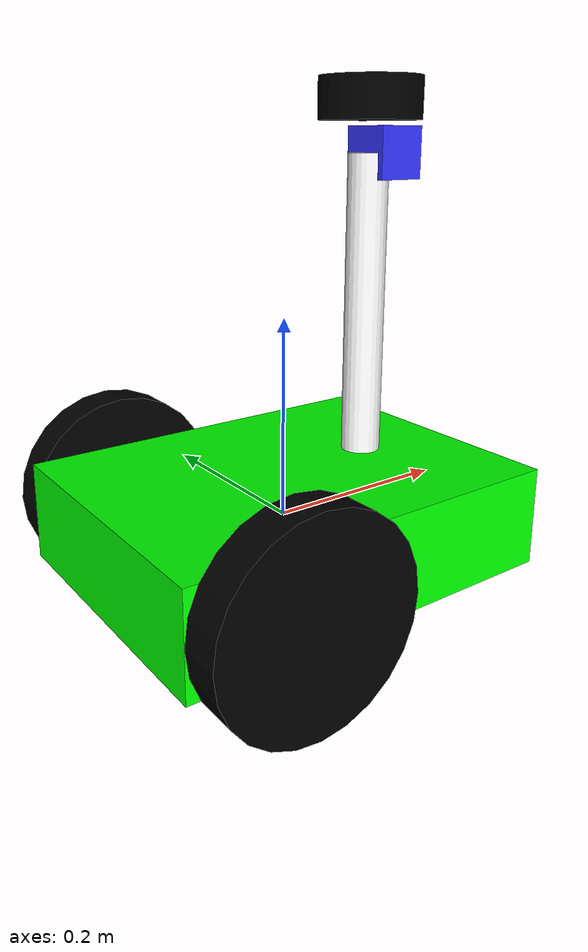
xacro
<?xml version="1.0"?>
<robot name="robotito" xmlns:xacro="http://www.ros.org/wiki/xacro">

  <!-- namespace -->
  <xacro:arg name="prefix" default="" />
  <xacro:property name="prefijo_ns" value="$(arg prefix)" />

  <!-- los distintos archivos que usa -->
  <xacro:include filename="inertial_macros.xacro" />
  <xacro:include filename="gazebo_control.xacro" />
  <xacro:include filename="lidar.xacro" />
  <xacro:include filename="camera.xacro" />

  <!-- ya las cosas del robot -->
  <xacro:property name="largo_chasis" value="0.4" />
  <xacro:property name="ancho_chasis" value="0.3" />
  <xacro:property name="alto_chasis" value="0.1" />
  <xacro:property name="masa_chasis" value="1.0" />

  <xacro:property name="radio_rueda" value="0.1" />
  <xacro:property name="grosor_rueda" value="0.04" />
  <xacro:property name="masa_rueda" value="0.1" />
  <xacro:property name="offset_rueda_x" value="0.1" />
  <xacro:property name="offset_rueda_y" value="0.1705" />
  <xacro:property name="offset_rueda_z" value="0.0" />

  <xacro:property name="radio_rueda_loca" value="0.025" />
  <xacro:property name="masa_rueda_loca" value="0.05" />
  <xacro:property name="offset_rueda_loca_x" value="0.15" />
  <xacro:property name="offset_rueda_loca_z" value="-0.075" />

  <material name="white">
    <color rgba="1 1 1 1" />
  </material>

  <material name="orange">
    <color rgba="1 0.3 0.1 1"/>
  </material>

  <material name="blue">
    <color rgba="0.2 0.2 1 1"/>
  </material>

  <material name="black">
    <color rgba="0 0 0 1"/>
  </material>

  <material name="green">
    <color rgba="0 1 0 1"/>
  </material>

  <!-- el base link-->
  <link name="${prefijo_ns}base_link">
    <visual>
        <origin xyz="0 0 0" rpy="0 0 0"/>
        <geometry>
            <box size="${largo_chasis} ${ancho_chasis} ${alto_chasis}"/>
        </geometry>
        <material name="green"/>
    </visual>
    <collision>
        <origin xyz="0 0 0" rpy="0 0 0"/>
        <geometry>
            <box size="${largo_chasis} ${ancho_chasis} ${alto_chasis}"/>
        </geometry>
    </collision>
    <xacro:inercia_caja mass="${masa_chasis}" x="${largo_chasis}" y="${ancho_chasis}" z="${alto_chasis}">
        <origin xyz="0 0 0" rpy="0 0 0"/>
    </xacro:inercia_caja>
  </link>

  <!-- wheel macro -->
  <xacro:macro name="wheel" params="lado desplazamiento_y">
    <link name="${prefijo_ns}${lado}_wheel">
      <visual>
        <origin xyz="0 0 0" rpy="1.5707 0 0 "/>
        <geometry>
            <cylinder radius="${radio_rueda}" length="${grosor_rueda}"/>
        </geometry>
        <material name="black"/>
      </visual>
      <collision>
        <origin xyz="0 0 0" rpy="1.5707 0 0 "/>
        <geometry>
            <cylinder radius="${radio_rueda}" length="${grosor_rueda}"/>
        </geometry>
      </collision>
      <xacro:inercia_cilindro mass="${masa_rueda}" length="${grosor_rueda}" radius="${radio_rueda}">
        <origin xyz="0 0 0" rpy="1.5707 0 0"/>
      </xacro:inercia_cilindro>
    </link>

    <joint name="${prefijo_ns}${lado}_wheel_joint" type="continuous">
      <parent link="${prefijo_ns}base_link"/>
      <child link="${prefijo_ns}${lado}_wheel"/>
      <origin xyz="${-offset_rueda_x} ${desplazamiento_y} ${offset_rueda_z}" rpy="0 0 0"/>
      <axis xyz="0 1 0"/>
    </joint>
  </xacro:macro>

  <xacro:wheel lado="left" desplazamiento_y="${offset_rueda_y}"/>
  <xacro:wheel lado="right" desplazamiento_y="${-offset_rueda_y}"/>

<!-- rueda caster-->

  <link name="${prefijo_ns}caster_wheel">
    <visual>
      <geometry>
        <sphere radius="${radio_rueda_loca}"/>
      </geometry>
      <material name="white"/>
    </visual>
    <collision>
      <geometry>
        <sphere radius="${radio_rueda_loca}"/>
      </geometry>
    </collision>
    <xacro:inercia_esfera mass="${masa_rueda_loca}" radius="${radio_rueda_loca}">
        <origin xyz="0 0 0" rpy="0 0 0"/>
    </xacro:inercia_esfera>
  </link>

  <joint name="${prefijo_ns}caster_joint" type="fixed">
    <parent link="${prefijo_ns}base_link"/>
    <child link="${prefijo_ns}caster_wheel"/>
    <origin xyz="${offset_rueda_loca_x} 0 ${offset_rueda_loca_z}"/>
  </joint>

</robot>

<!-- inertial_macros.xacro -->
<robot xmlns:xacro="http://www.ros.org/wiki/xacro" >

    <xacro:macro name="inercia_esfera" params="mass radius *origin">
        <inertial>
            <xacro:insert_block name="origin"/>
            <mass value="${mass}" />
            <inertia ixx="${(2/5) * mass * (radius*radius)}" ixy="0.0" ixz="0.0"
                    iyy="${(2/5) * mass * (radius*radius)}" iyz="0.0"
                    izz="${(2/5) * mass * (radius*radius)}" />
        </inertial>
    </xacro:macro>

    <xacro:macro name="inercia_caja" params="mass x y z *origin">
        <inertial>
            <xacro:insert_block name="origin"/>
            <mass value="${mass}" />
            <inertia ixx="${(1/12) * mass * (y*y + z*z)}" ixy="0.0" ixz="0.0"
                    iyy="${(1/12) * mass * (x*x + z*z)}" iyz="0.0"
                    izz="${(1/12) * mass * (x*x + y*y)}" />
        </inertial>
    </xacro:macro>

    <xacro:macro name="inercia_cilindro" params="mass length radius *origin">
        <inertial>
            <xacro:insert_block name="origin"/>
            <mass value="${mass}" />
            <inertia ixx="${(1/12) * mass * (3*radius*radius + length*length)}" ixy="0.0" ixz="0.0"
                    iyy="${(1/12) * mass * (3*radius*radius + length*length)}" iyz="0.0"
                    izz="${(1/2) * mass * (radius*radius)}" />
        </inertial>
    </xacro:macro>

</robot>

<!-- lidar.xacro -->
<robot xmlns:xacro="http://www.ros.org/wiki/xacro" >

    <xacro:property name="radio_lidar" value="0.05" />
    <xacro:property name="longitud_lidar" value="0.04" />
    <xacro:property name="paquete_lidar" value="practica1" />

    <joint name="${prefijo_ns}laser_joint" type="fixed">
        <parent link="${prefijo_ns}base_link"/>
        <child link="${prefijo_ns}laser_frame"/>
        <origin xyz="0.1 0 0.4" rpy="0 0 0"/>
    </joint>

    <link name="${prefijo_ns}laser_frame">
        <visual>
            <geometry>
                <cylinder radius="${radio_lidar}" length="${longitud_lidar}"/>
            </geometry>
            <material name="black"/>
        </visual>
        <collision>
            <geometry>
                <cylinder radius="${radio_lidar}" length="${longitud_lidar}"/>
            </geometry>
        </collision>
        <xacro:inercia_cilindro mass="0.1" length="${longitud_lidar}" radius="${radio_lidar}">
            <origin xyz="0 0 0" rpy="0 0 0"/>
        </xacro:inercia_cilindro>
    </link>

    <gazebo reference="${prefijo_ns}laser_frame">
        <material>Gazebo/Black</material>

        <sensor name="lidar" type="gpu_lidar">
            <pose> 0 0 0 0 0 0 </pose>
            <visualize>true</visualize>
            <update_rate>10</update_rate>
            <lidar>
                <scan>
                    <horizontal>
                        <samples>360</samples>
                        <resolution>1</resolution>
                        <min_angle>-3.14</min_angle>
                        <max_angle>3.14</max_angle>
                    </horizontal>
                </scan>
                <range>
                    <min>0.1</min>
                    <max>10</max> <!-- 12 metros por ejemplo de max -->
                </range>
                <noise>
                  <type>gaussian</type>
                  <mean>0.0</mean>
                  <stddev>0.01</stddev>
                </noise>
            </lidar>
            <topic>$(arg prefix)scan</topic>
            <gz_frame_id>$(arg prefix)laser_frame</gz_frame_id>
        </sensor>
    </gazebo>

</robot>

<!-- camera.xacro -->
<robot xmlns:xacro="http://www.ros.org/wiki/xacro" >

    <joint name="${prefijo_ns}camera_mast_joint" type="fixed">
        <parent link="${prefijo_ns}base_link"/>
        <child link="${prefijo_ns}camera_mast"/>
        <origin xyz="0.10 0 0.20" rpy="0 0 0"/>
    </joint>

    <link name="${prefijo_ns}camera_mast">
        <visual>
            <geometry>
                <cylinder radius="0.02" length="0.30"/>
            </geometry>
            <material name="white"/>
        </visual>
        <collision>
            <geometry>
                <cylinder radius="0.02" length="0.30"/>
            </geometry>
        </collision>
        <xacro:inercia_cilindro mass="0.05" length="0.30" radius="0.02">
            <origin xyz="0 0 0" rpy="0 0 0"/>
        </xacro:inercia_cilindro>
    </link>

    <joint name="${prefijo_ns}camera_joint" type="fixed">
        <parent link="${prefijo_ns}camera_mast"/>
        <child link="${prefijo_ns}camera_link"/>
        <origin xyz="0.02 0 0.15" rpy="0 0 0"/>
    </joint>

    <link name="${prefijo_ns}camera_link">
        <visual>
            <geometry>
                <box size="0.05 0.05 0.05"/>
            </geometry>
            <material name="blue"/>
        </visual>
        <collision>
            <geometry>
                <box size="0.05 0.05 0.05"/>
            </geometry>
        </collision>
        <xacro:inercia_caja mass="0.05" x="0.05" y="0.05" z="0.05">
            <origin xyz="0 0 0" rpy="0 0 0"/>
        </xacro:inercia_caja>
    </link>

    <joint name="${prefijo_ns}camera_optical_joint" type="fixed">
        <origin xyz="0 0 0" rpy="-1.5708 0 -1.5708"/>
        <parent link="${prefijo_ns}camera_link"/>
        <child link="${prefijo_ns}camera_link_optical"/>
    </joint>

    <link name="${prefijo_ns}camera_link_optical"></link>

    <gazebo reference="${prefijo_ns}camera_link">
        <material>Gazebo/Blue</material>
        <sensor name="camera" type="camera">
            <pose> 0 0 0 0 0 0 </pose>
            <visualize>true</visualize>
            <update_rate>30.0</update_rate>
            <camera>
                <horizontal_fov>1.3962634</horizontal_fov>
                <image>
                    <width>800</width>
                    <height>800</height>
                    <format>R8G8B8</format>
                </image>
                <clip>
                    <near>0.02</near>
                    <far>300</far>
                </clip>
            </camera>
            <topic>$(arg prefix)camera/image_raw</topic>
            <gz_frame_id>$(arg prefix)camera_link_optical</gz_frame_id>
        </sensor>
    </gazebo>

</robot>
